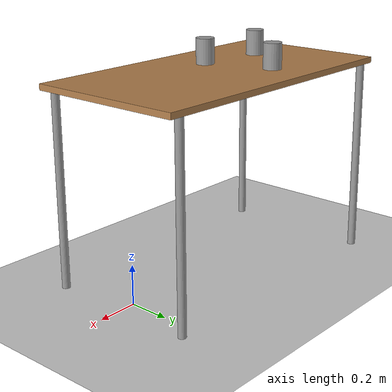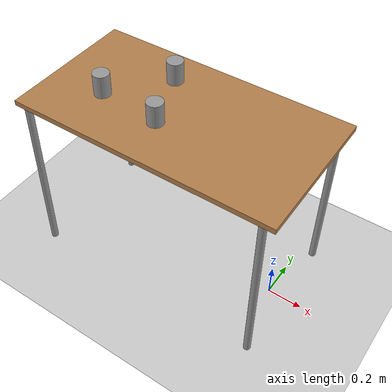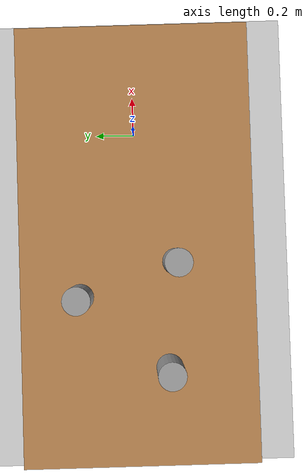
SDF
<sdf version="1.6">
 <world name="custom">
  <model name="ground_plane">
   <static>1</static>
   <link name="link">
    <collision name="collision">
     <geometry><plane><normal>0 0 1</normal><size>100 100</size></plane></geometry>
     <surface>
      <contact><collide_bitmask>65535</collide_bitmask></contact>
      <friction><ode><mu>100</mu><mu2>50</mu2></ode></friction>
     </surface>
    </collision>
    <visual name="visual">
     <cast_shadows>0</cast_shadows>
     <geometry><plane><normal>0 0 1</normal><size>100 100</size></plane></geometry>
     <material>
      <script><uri>file://media/materials/scripts/gazebo.material</uri><name>Gazebo/Grey</name></script>
     </material>
    </visual>
   </link>
  </model>
  <light name="sun" type="directional">
   <pose>0 0 10 0 -0 0</pose>
   <diffuse>0.8 0.8 0.8 1</diffuse>
   <specular>0.2 0.2 0.2 1</specular>
   <attenuation>
    <range>1000</range>
    <constant>0.9</constant>
    <linear>0.01</linear>
    <quadratic>0.001</quadratic>
   </attenuation>
   <direction>-0.5 0.1 -0.9</direction>
  </light>
  <model name="Table">
   <static>1</static>
   <link name="link">
    <collision name="surface">
     <pose>0 0 1 0 -0 0</pose>
     <geometry><box><size>1.5 0.8 0.03</size></box></geometry>
     <surface><friction><ode><mu>0.6</mu><mu2>0.6</mu2></ode></friction></surface>
    </collision>
    <visual name="visual1">
     <pose>0 0 1 0 -0 0</pose>
     <geometry><box><size>1.5 0.8 0.03</size></box></geometry>
     <material>
      <script><uri>file://media/materials/scripts/gazebo.material</uri><name>Gazebo/Wood</name></script>
     </material>
    </visual>
    <collision name="front_left_leg">
     <pose>0.68 0.38 0.5 0 -0 0</pose>
     <geometry><cylinder><radius>0.02</radius><length>1</length></cylinder></geometry>
    </collision>
    <visual name="front_left_leg">
     <pose>0.68 0.38 0.5 0 -0 0</pose>
     <geometry><cylinder><radius>0.02</radius><length>1</length></cylinder></geometry>
     <material>
      <script><uri>file://media/materials/scripts/gazebo.material</uri><name>Gazebo/Grey</name></script>
     </material>
    </visual>
    <collision name="front_right_leg">
     <pose>0.68 -0.38 0.5 0 -0 0</pose>
     <geometry><cylinder><radius>0.02</radius><length>1</length></cylinder></geometry>
    </collision>
    <visual name="front_right_leg">
     <pose>0.68 -0.38 0.5 0 -0 0</pose>
     <geometry><cylinder><radius>0.02</radius><length>1</length></cylinder></geometry>
     <material>
      <script><uri>file://media/materials/scripts/gazebo.material</uri><name>Gazebo/Grey</name></script>
     </material>
    </visual>
    <collision name="back_right_leg">
     <pose>-0.68 -0.38 0.5 0 -0 0</pose>
     <geometry><cylinder><radius>0.02</radius><length>1</length></cylinder></geometry>
    </collision>
    <visual name="back_right_leg">
     <pose>-0.68 -0.38 0.5 0 -0 0</pose>
     <geometry><cylinder><radius>0.02</radius><length>1</length></cylinder></geometry>
     <material>
      <script><uri>file://media/materials/scripts/gazebo.material</uri><name>Gazebo/Grey</name></script>
     </material>
    </visual>
    <collision name="back_left_leg">
     <pose>-0.68 0.38 0.5 0 -0 0</pose>
     <geometry><cylinder><radius>0.02</radius><length>1</length></cylinder></geometry>
    </collision>
    <visual name="back_left_leg">
     <pose>-0.68 0.38 0.5 0 -0 0</pose>
     <geometry><cylinder><radius>0.02</radius><length>1</length></cylinder></geometry>
     <material>
      <script><uri>file://media/materials/scripts/gazebo.material</uri><name>Gazebo/Grey</name></script>
     </material>
    </visual>
   </link>
   <pose>-0.6 0 0 0 -0 0</pose>
  </model>
  <gravity>0 0 -9.8</gravity>
  <magnetic_field>6e-06 2.3e-05 -4.2e-05</magnetic_field>
  <atmosphere type="adiabatic"/>
  <physics name="default_physics" default="0" type="ode">
   <max_step_size>0.001</max_step_size>
   <real_time_factor>1</real_time_factor>
   <real_time_update_rate>1000</real_time_update_rate>
  </physics>
  <scene><ambient>0.4 0.4 0.4 1</ambient><background>0.7 0.7 0.7 1</background><shadows>1</shadows></scene>
  <audio><device>default</device></audio>
  <spherical_coordinates>
   <surface_model>EARTH_WGS84</surface_model>
   <latitude_deg>0</latitude_deg>
   <longitude_deg>0</longitude_deg>
   <elevation>0</elevation>
   <heading_deg>0</heading_deg>
  </spherical_coordinates>
  <model name="unit_cylinder">
   <link name="link">
    <inertial>
     <mass>0.00107202</mass>
     <inertia>
      <ixx>2.04769e-06</ixx>
      <ixy>0</ixy>
      <ixz>0</ixz>
      <iyy>2.04769e-06</iyy>
      <iyz>0</iyz>
      <izz>1.12039e-06</izz>
     </inertia>
    </inertial>
    <pose>-0.006261 -0.690393 -0.390928 0 -0 0</pose>
    <visual name="visual">
     <geometry><cylinder><radius>0.0457193</radius><length>0.129038</length></cylinder></geometry>
     <material>
      <script><name>Gazebo/Grey</name><uri>file://media/materials/scripts/gazebo.material</uri></script>
     </material>
    </visual>
    <collision name="collision">
     <geometry><cylinder><radius>0.045719</radius><length>0.129038</length></cylinder></geometry>
     <surface>
      <friction>
       <ode><mu>1</mu><mu2>1</mu2><fdir1>0 0 0</fdir1><slip1>0</slip1><slip2>0</slip2></ode>
       <torsional>
        <coefficient>1</coefficient>
        <patch_radius>0</patch_radius>
        <surface_radius>0</surface_radius>
        <use_patch_radius>1</use_patch_radius>
        <ode><slip>0</slip></ode>
       </torsional>
      </friction>
      <bounce><restitution_coefficient>0</restitution_coefficient><threshold>1e+06</threshold></bounce>
      <contact>
       <collide_without_contact>0</collide_without_contact>
       <collide_without_contact_bitmask>1</collide_without_contact_bitmask>
       <collide_bitmask>1</collide_bitmask>
       <ode>
        <soft_cfm>0</soft_cfm>
        <soft_erp>0.2</soft_erp>
        <kp>1e+13</kp>
        <kd>1</kd>
        <max_vel>0.01</max_vel>
        <min_depth>0</min_depth>
       </ode>
       <bullet>
        <split_impulse>1</split_impulse>
        <split_impulse_penetration_threshold>-0.01</split_impulse_penetration_threshold>
        <soft_cfm>0</soft_cfm>
        <soft_erp>0.2</soft_erp>
        <kp>1e+13</kp>
        <kd>1</kd>
       </bullet>
      </contact>
     </surface>
    </collision>
   </link>
   <static>0</static>
   <pose>-0.772239 0.885811 1.47044 -0 -0 -0.000138</pose>
  </model>
  <model name="unit_cylinder_0">
   <link name="link">
    <inertial>
     <mass>0.00107202</mass>
     <inertia>
      <ixx>2.04769e-06</ixx>
      <ixy>0</ixy>
      <ixz>0</ixz>
      <iyy>2.04769e-06</iyy>
      <iyz>0</iyz>
      <izz>1.12039e-06</izz>
     </inertia>
    </inertial>
    <pose>-0.006261 -0.690393 -0.390928 0 -0 0</pose>
    <visual name="visual">
     <geometry><cylinder><radius>0.0457193</radius><length>0.129038</length></cylinder></geometry>
     <material>
      <script><name>Gazebo/Grey</name><uri>file://media/materials/scripts/gazebo.material</uri></script>
     </material>
    </visual>
    <collision name="collision">
     <geometry><cylinder><radius>0.045719</radius><length>0.129038</length></cylinder></geometry>
     <surface>
      <friction>
       <ode><mu>1</mu><mu2>1</mu2><fdir1>0 0 0</fdir1><slip1>0</slip1><slip2>0</slip2></ode>
       <torsional>
        <coefficient>1</coefficient>
        <patch_radius>0</patch_radius>
        <surface_radius>0</surface_radius>
        <use_patch_radius>1</use_patch_radius>
        <ode><slip>0</slip></ode>
       </torsional>
      </friction>
      <bounce><restitution_coefficient>0</restitution_coefficient><threshold>1e+06</threshold></bounce>
      <contact>
       <collide_without_contact>0</collide_without_contact>
       <collide_without_contact_bitmask>1</collide_without_contact_bitmask>
       <collide_bitmask>1</collide_bitmask>
       <ode>
        <soft_cfm>0</soft_cfm>
        <soft_erp>0.2</soft_erp>
        <kp>1e+13</kp>
        <kd>1</kd>
        <max_vel>0.01</max_vel>
        <min_depth>0</min_depth>
       </ode>
       <bullet>
        <split_impulse>1</split_impulse>
        <split_impulse_penetration_threshold>-0.01</split_impulse_penetration_threshold>
        <soft_cfm>0</soft_cfm>
        <soft_erp>0.2</soft_erp>
        <kp>1e+13</kp>
        <kd>1</kd>
       </bullet>
      </contact>
     </surface>
    </collision>
   </link>
   <static>0</static>
   <pose>-1.01623 0.58941 1.47044 0 -0 0.000776</pose>
  </model>
  <model name="unit_cylinder_1">
   <link name="link">
    <inertial>
     <mass>0.00107202</mass>
     <inertia>
      <ixx>2.04769e-06</ixx>
      <ixy>0</ixy>
      <ixz>0</ixz>
      <iyy>2.04769e-06</iyy>
      <iyz>0</iyz>
      <izz>1.12039e-06</izz>
     </inertia>
    </inertial>
    <pose>-0.006261 -0.690393 -0.390928 0 -0 0</pose>
    <visual name="visual">
     <geometry><cylinder><radius>0.0457193</radius><length>0.129038</length></cylinder></geometry>
     <material>
      <script><name>Gazebo/Grey</name><uri>file://media/materials/scripts/gazebo.material</uri></script>
     </material>
    </visual>
    <collision name="collision">
     <geometry><cylinder><radius>0.045719</radius><length>0.129038</length></cylinder></geometry>
     <surface>
      <friction>
       <ode><mu>1</mu><mu2>1</mu2><fdir1>0 0 0</fdir1><slip1>0</slip1><slip2>0</slip2></ode>
       <torsional>
        <coefficient>1</coefficient>
        <patch_radius>0</patch_radius>
        <surface_radius>0</surface_radius>
        <use_patch_radius>1</use_patch_radius>
        <ode><slip>0</slip></ode>
       </torsional>
      </friction>
      <bounce><restitution_coefficient>0</restitution_coefficient><threshold>1e+06</threshold></bounce>
      <contact>
       <collide_without_contact>0</collide_without_contact>
       <collide_without_contact_bitmask>1</collide_without_contact_bitmask>
       <collide_bitmask>1</collide_bitmask>
       <ode>
        <soft_cfm>0</soft_cfm>
        <soft_erp>0.2</soft_erp>
        <kp>1e+13</kp>
        <kd>1</kd>
        <max_vel>0.01</max_vel>
        <min_depth>0</min_depth>
       </ode>
       <bullet>
        <split_impulse>1</split_impulse>
        <split_impulse_penetration_threshold>-0.01</split_impulse_penetration_threshold>
        <soft_cfm>0</soft_cfm>
        <soft_erp>0.2</soft_erp>
        <kp>1e+13</kp>
        <kd>1</kd>
       </bullet>
      </contact>
     </surface>
    </collision>
   </link>
   <static>0</static>
   <pose>-0.659194 0.558756 1.47045 0 0 -1.1e-05</pose>
  </model>
 </world>
</sdf>
